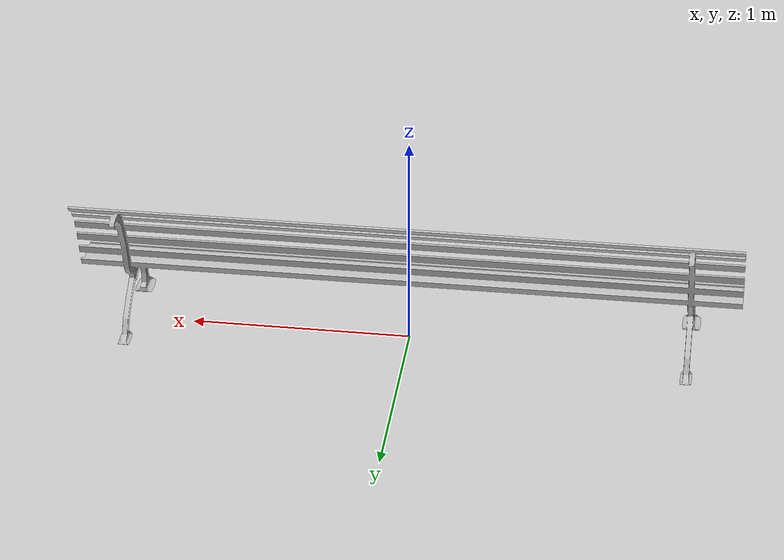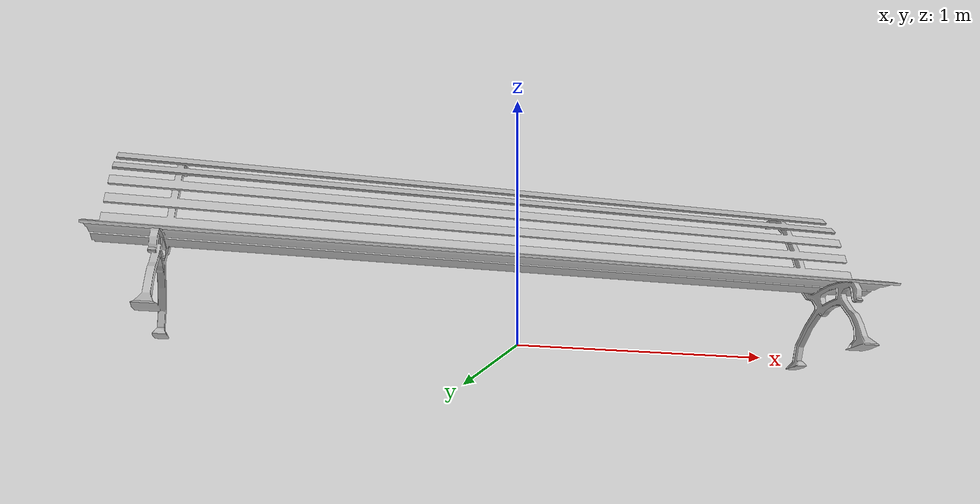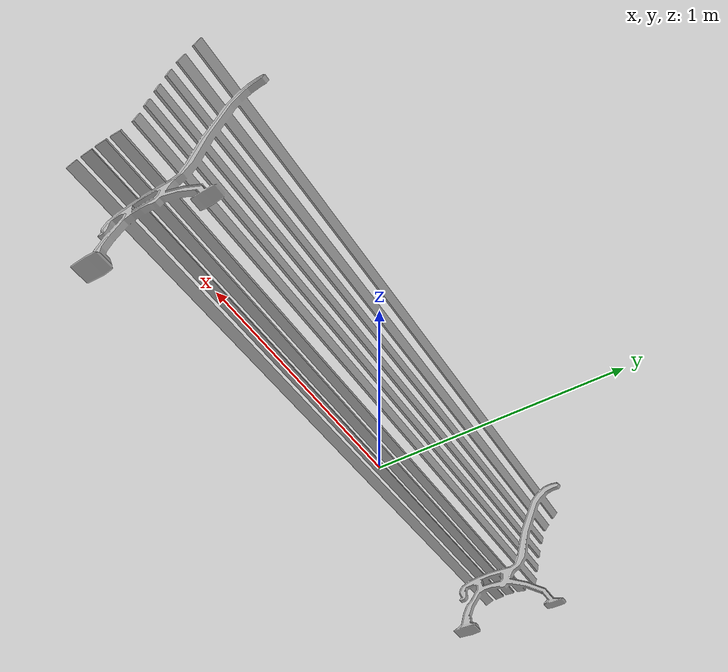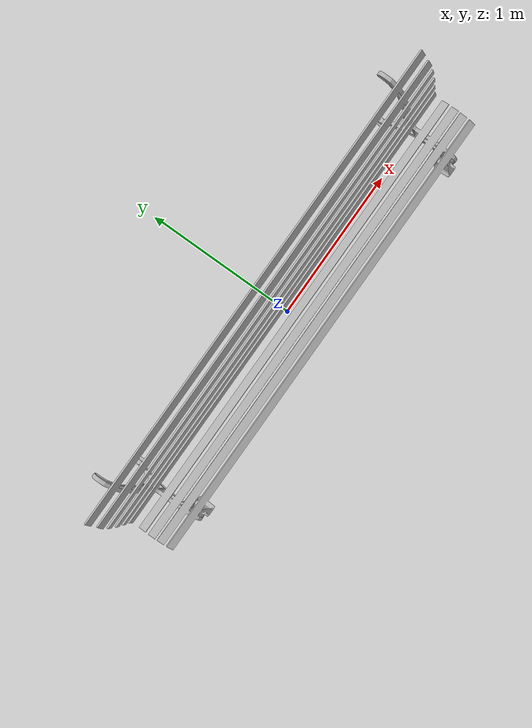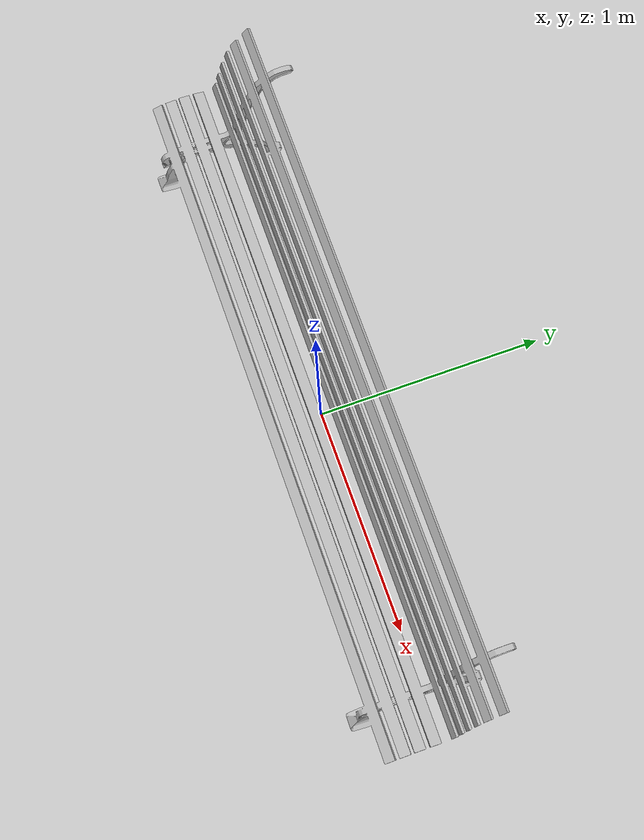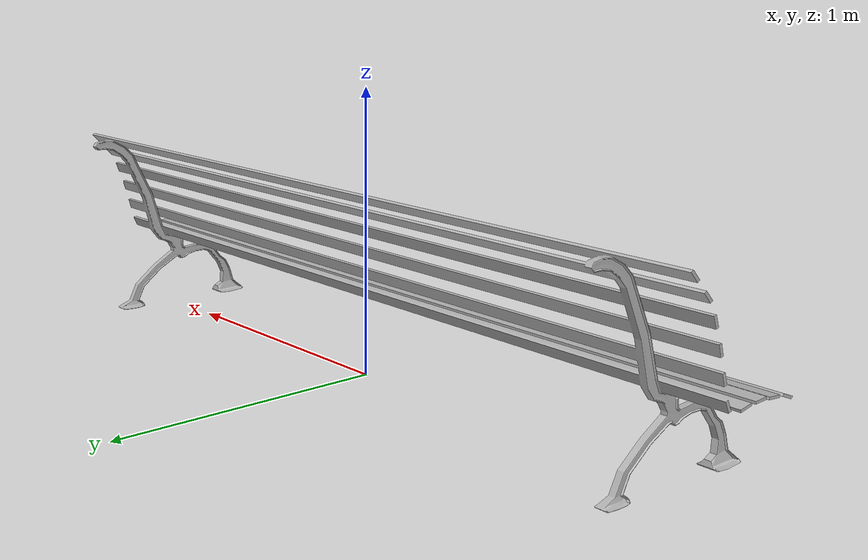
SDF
<?xml version="1.0" ?>
<sdf version="1.5">
  <model name="Banco">
    <static>true</static>
    <link name="link">
      <collision name="collision">
        <geometry>
            <mesh>
                <uri>model://banco/meshes/banco.stl</uri>
                <scale>1 1 1</scale>
            </mesh>
        </geometry>
      </collision>
      <visual name="visual">
        <geometry>
          <mesh>
            <uri>model://banco/meshes/banco.stl</uri>
            <scale>1 1 1</scale>
          </mesh>
        </geometry>
      </visual>
    </link>
    <gazebo reference="link">
      <material>Gazebo/White</material>
    </gazebo>
  </model>
</sdf>
